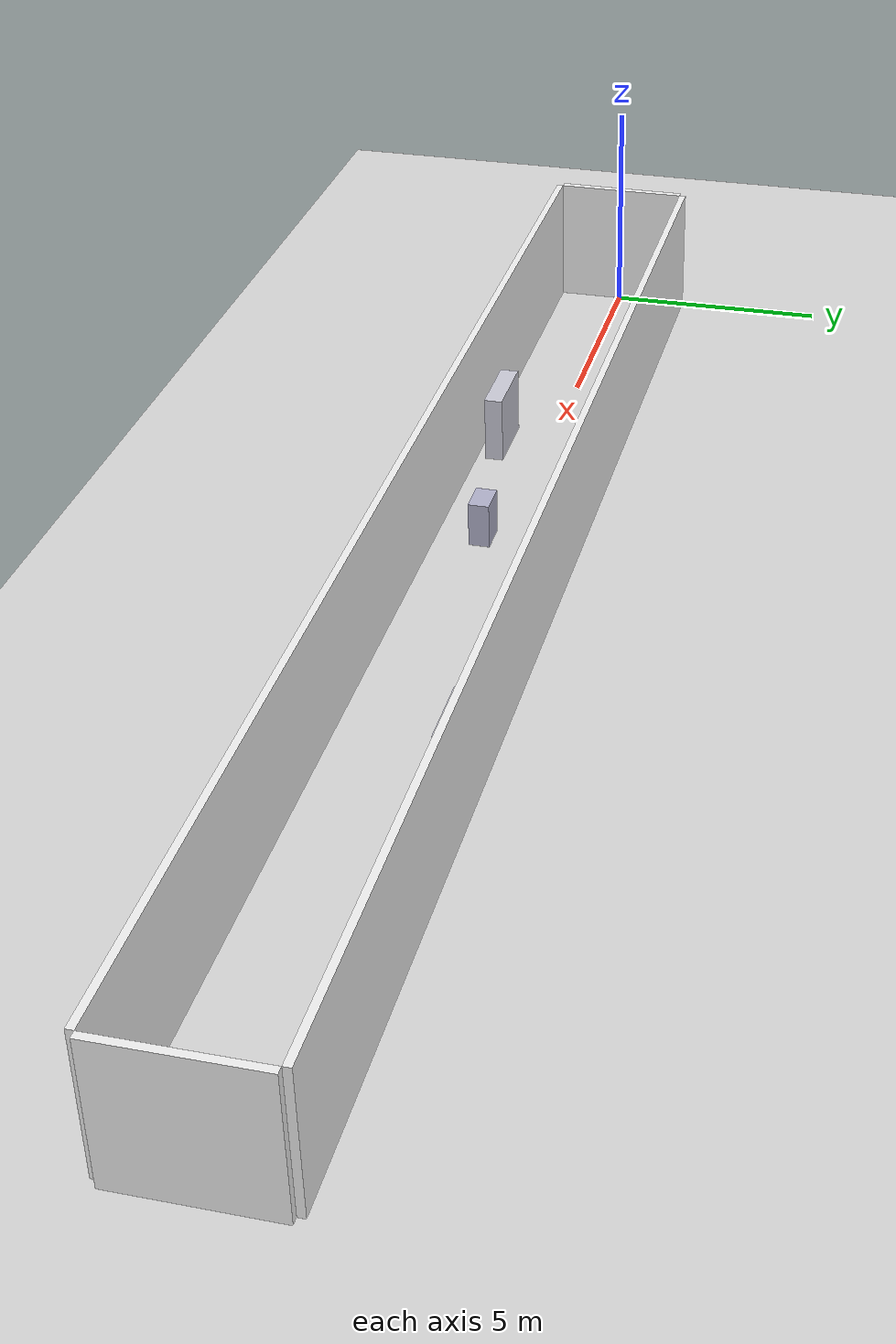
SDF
<?xml version="1.0" ?>
<sdf version="1.9">
  <world name="hospital_corridor">

    <physics name="default_physics" type="ode">
      <max_step_size>0.001</max_step_size>
      <real_time_factor>1.0</real_time_factor>
      <real_time_update_rate>1000</real_time_update_rate>
    </physics>

    <plugin filename="gz-sim-physics-system" name="gz::sim::systems::Physics"/>
    <plugin filename="gz-sim-user-commands-system" name="gz::sim::systems::UserCommands"/>
    <plugin filename="gz-sim-scene-broadcaster-system" name="gz::sim::systems::SceneBroadcaster"/>
    <plugin filename="gz-sim-sensors-system" name="gz::sim::systems::Sensors">
      <render_engine>ogre2</render_engine>
    </plugin>

    <light name="sun" type="directional">
      <cast_shadows>false</cast_shadows>
      <pose>15 1.5 6 0 0 0</pose>
      <diffuse>0.9 0.9 0.95 1</diffuse>
      <specular>0.1 0.1 0.1 1</specular>
      <direction>0 0 -1</direction>
    </light>

    <!-- Ground -->
    <model name="ground_plane">
      <static>true</static>
      <link name="link">
        <collision name="c"><geometry><plane><normal>0 0 1</normal><size>50 20</size></plane></geometry></collision>
        <visual name="v"><geometry><plane><normal>0 0 1</normal><size>50 20</size></plane></geometry>
          <material><ambient>0.85 0.85 0.85 1</ambient><diffuse>0.85 0.85 0.85 1</diffuse></material>
        </visual>
      </link>
    </model>

    <!-- ── Corridor walls (30 m long, 3 m wide) ───────────────────────────── -->
    <!-- South wall (y = -1.5) -->
    <model name="wall_south">
      <static>true</static>
      <pose>15 -1.575 1.5 0 0 0</pose>
      <link name="link">
        <collision name="c"><geometry><box><size>30 0.15 3.0</size></box></geometry></collision>
        <visual name="v"><geometry><box><size>30 0.15 3.0</size></box></geometry>
          <material><ambient>0.95 0.95 0.95 1</ambient><diffuse>0.95 0.95 0.95 1</diffuse></material>
        </visual>
      </link>
    </model>
    <!-- North wall (y = +1.5) -->
    <model name="wall_north">
      <static>true</static>
      <pose>15 1.575 1.5 0 0 0</pose>
      <link name="link">
        <collision name="c"><geometry><box><size>30 0.15 3.0</size></box></geometry></collision>
        <visual name="v"><geometry><box><size>30 0.15 3.0</size></box></geometry>
          <material><ambient>0.95 0.95 0.95 1</ambient><diffuse>0.95 0.95 0.95 1</diffuse></material>
        </visual>
      </link>
    </model>
    <!-- West end wall -->
    <model name="wall_west">
      <static>true</static>
      <pose>-0.075 0 1.5 0 0 0</pose>
      <link name="link">
        <collision name="c"><geometry><box><size>0.15 3.0 3.0</size></box></geometry></collision>
        <visual name="v"><geometry><box><size>0.15 3.0 3.0</size></box></geometry>
          <material><ambient>0.95 0.95 0.95 1</ambient><diffuse>0.95 0.95 0.95 1</diffuse></material>
        </visual>
      </link>
    </model>
    <!-- East end wall -->
    <model name="wall_east">
      <static>true</static>
      <pose>30.075 0 1.5 0 0 0</pose>
      <link name="link">
        <collision name="c"><geometry><box><size>0.15 3.0 3.0</size></box></geometry></collision>
        <visual name="v"><geometry><box><size>0.15 3.0 3.0</size></box></geometry>
          <material><ambient>0.95 0.95 0.95 1</ambient><diffuse>0.95 0.95 0.95 1</diffuse></material>
        </visual>
      </link>
    </model>

    <!-- ── Medical equipment alcoves ──────────────────────────────────────── -->
    <!-- Alcove south at x=8 (protrudes 0.4 m into corridor) -->
    <model name="alcove_south_8">
      <static>true</static>
      <pose>8 -1.1 0.75 0 0 0</pose>
      <link name="link">
        <collision name="c"><geometry><box><size>1.5 0.4 1.5</size></box></geometry></collision>
        <visual name="v"><geometry><box><size>1.5 0.4 1.5</size></box></geometry>
          <material><ambient>0.8 0.8 0.85 1</ambient><diffuse>0.8 0.8 0.85 1</diffuse></material>
        </visual>
      </link>
    </model>
    <!-- Alcove north at x=20 -->
    <model name="alcove_north_20">
      <static>true</static>
      <pose>20 1.1 0.75 0 0 0</pose>
      <link name="link">
        <collision name="c"><geometry><box><size>1.5 0.4 1.5</size></box></geometry></collision>
        <visual name="v"><geometry><box><size>1.5 0.4 1.5</size></box></geometry>
          <material><ambient>0.8 0.8 0.85 1</ambient><diffuse>0.8 0.8 0.85 1</diffuse></material>
        </visual>
      </link>
    </model>

    <!-- ── Static obstacles — medical carts ──────────────────────────────── -->
    <!-- Cart partially blocking at x=12, y=-0.5 (leaves ~1.0 m gap north) -->
    <model name="medical_cart_1">
      <static>true</static>
      <pose>12 -0.5 0.5 0 0 0</pose>
      <link name="link">
        <collision name="c"><geometry><box><size>0.7 0.45 1.0</size></box></geometry></collision>
        <visual name="v"><geometry><box><size>0.7 0.45 1.0</size></box></geometry>
          <material><ambient>0.7 0.7 0.8 1</ambient><diffuse>0.7 0.7 0.8 1</diffuse></material>
        </visual>
      </link>
    </model>

    <!-- ── Charging dock at corridor start ───────────────────────────────── -->
    <model name="charger_corridor">
      <static>true</static>
      <pose>1.0 1.0 0.05 0 0 0</pose>
      <link name="link">
        <collision name="c"><geometry><box><size>0.3 0.2 0.10</size></box></geometry></collision>
        <visual name="v"><geometry><box><size>0.3 0.2 0.10</size></box></geometry>
          <material><ambient>0.1 0.7 0.1 1</ambient><diffuse>0.1 0.7 0.1 1</diffuse></material>
        </visual>
      </link>
    </model>

    <!-- ── ArUco marker on east end wall (for docking test) ──────────────── -->
    <model name="aruco_marker_42">
      <static>true</static>
      <pose>29.9 0 1.0 0 0 3.1416</pose>
      <link name="link">
        <visual name="v">
          <geometry><box><size>0.01 0.20 0.20</size></box></geometry>
          <material><ambient>0 0 0 1</ambient><diffuse>0 0 0 1</diffuse></material>
        </visual>
      </link>
    </model>

  </world>
</sdf>
